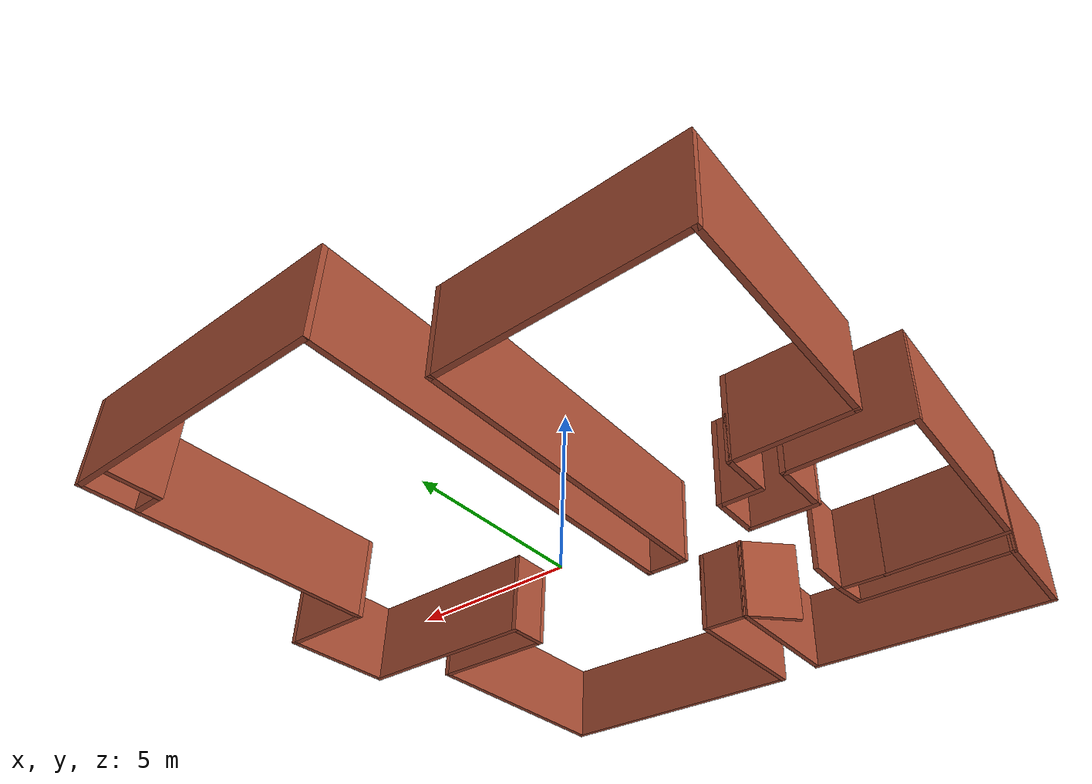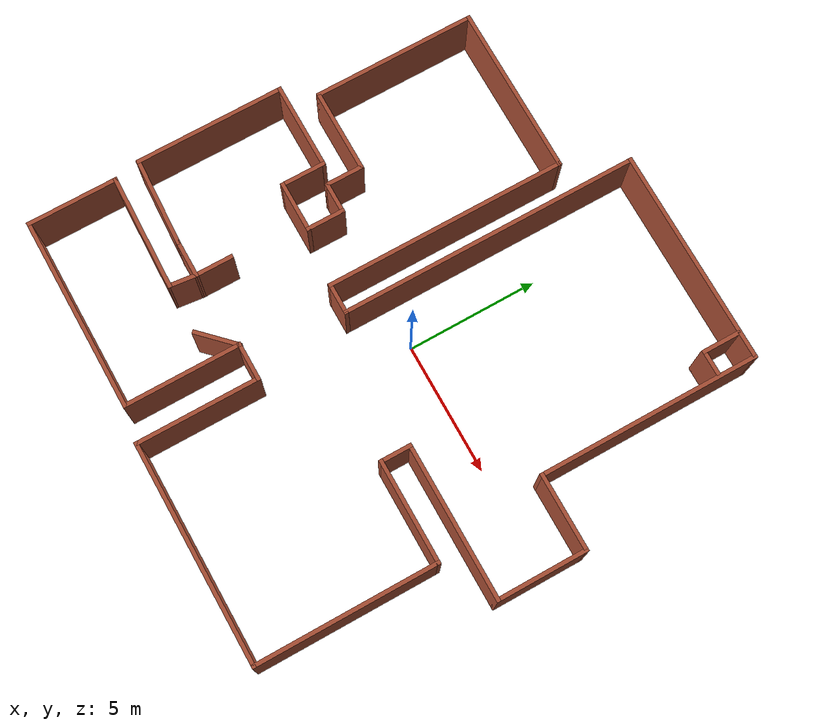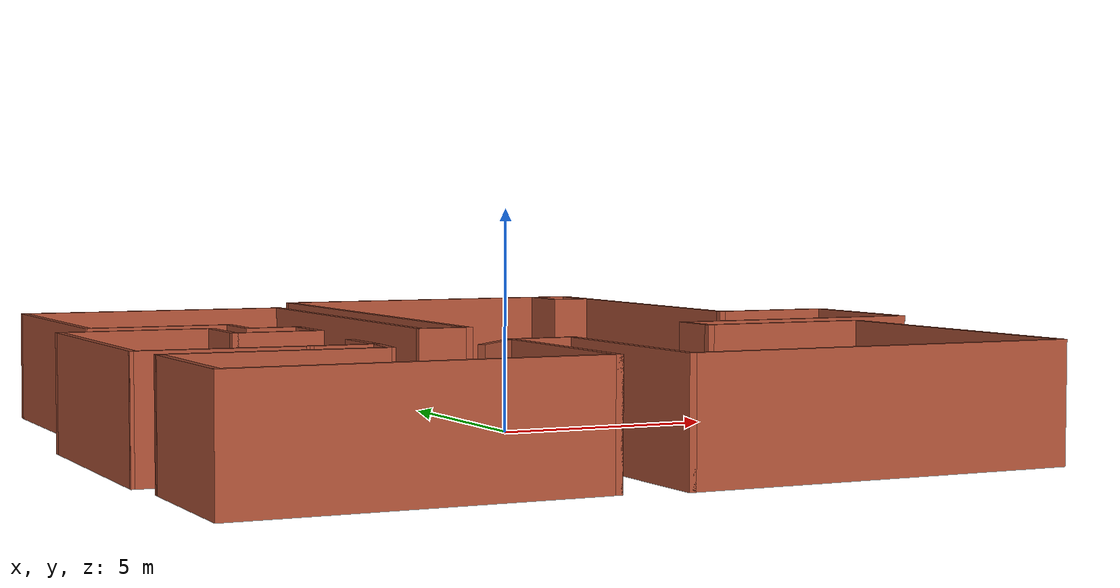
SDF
<?xml version='1.0'?>
<sdf version='1.6'>
  <model name='map_113'>
    <pose frame=''>-0.34995 -0.130126 0 0 -0 0</pose>
    <link name='Wall_25'>
      <collision name='Wall_25_Collision'>
        <geometry>
          <box>
            <size>3.5 0.15 2.5</size>
          </box>
        </geometry>
        <pose frame=''>0 0 1.25 0 -0 0</pose>
      </collision>
      <visual name='Wall_25_Visual'>
        <pose frame=''>0 0 1.25 0 -0 0</pose>
        <geometry>
          <box>
            <size>3.5 0.15 2.5</size>
          </box>
        </geometry>
        <material>
          <script>
            <uri>file://media/materials/scripts/gazebo.material</uri>
            <name>Gazebo/Bricks</name>
          </script>
          <ambient>1 1 1 1</ambient>
        </material>
        <meta>
          <layer>0</layer>
        </meta>
      </visual>
      <pose frame=''>-9.41984 -7.9 0 0 -0 -1.5708</pose>
    </link>
    <link name='Wall_31'>
      <collision name='Wall_31_Collision'>
        <geometry>
          <box>
            <size>7.5 0.15 2.5</size>
          </box>
        </geometry>
        <pose frame=''>0 0 1.25 0 -0 0</pose>
      </collision>
      <visual name='Wall_31_Visual'>
        <pose frame=''>0 0 1.25 0 -0 0</pose>
        <geometry>
          <box>
            <size>7.5 0.15 2.5</size>
          </box>
        </geometry>
        <material>
          <script>
            <uri>file://media/materials/scripts/gazebo.material</uri>
            <name>Gazebo/Bricks</name>
          </script>
          <ambient>1 1 1 1</ambient>
        </material>
        <meta>
          <layer>0</layer>
        </meta>
      </visual>
      <pose frame=''>-5.74484 -9.575 0 0 -0 0</pose>
    </link>
    <link name='Wall_32'>
      <collision name='Wall_32_Collision'>
        <geometry>
          <box>
            <size>4.5 0.15 2.5</size>
          </box>
        </geometry>
        <pose frame=''>0 0 1.25 0 -0 0</pose>
      </collision>
      <visual name='Wall_32_Visual'>
        <pose frame=''>0 0 1.25 0 -0 0</pose>
        <geometry>
          <box>
            <size>4.5 0.15 2.5</size>
          </box>
        </geometry>
        <material>
          <script>
            <uri>file://media/materials/scripts/gazebo.material</uri>
            <name>Gazebo/Bricks</name>
          </script>
          <ambient>1 1 1 1</ambient>
        </material>
        <meta>
          <layer>0</layer>
        </meta>
      </visual>
      <pose frame=''>-2.06984 -7.4 0 0 -0 1.5708</pose>
    </link>
    <link name='Wall_33'>
      <collision name='Wall_33_Collision'>
        <geometry>
          <box>
            <size>1.5 0.15 2.5</size>
          </box>
        </geometry>
        <pose frame=''>0 0 1.25 0 -0 0</pose>
      </collision>
      <visual name='Wall_33_Visual'>
        <pose frame=''>0 0 1.25 0 -0 0</pose>
        <geometry>
          <box>
            <size>1.5 0.15 2.5</size>
          </box>
        </geometry>
        <material>
          <script>
            <uri>file://media/materials/scripts/gazebo.material</uri>
            <name>Gazebo/Bricks</name>
          </script>
          <ambient>1 1 1 1</ambient>
        </material>
        <meta>
          <layer>0</layer>
        </meta>
      </visual>
      <pose frame=''>-1.39484 -5.225 0 0 -0 0</pose>
    </link>
    <link name='Wall_34'>
      <collision name='Wall_34_Collision'>
        <geometry>
          <box>
            <size>4.75 0.15 2.5</size>
          </box>
        </geometry>
        <pose frame=''>0 0 1.25 0 -0 0</pose>
      </collision>
      <visual name='Wall_34_Visual'>
        <pose frame=''>0 0 1.25 0 -0 0</pose>
        <geometry>
          <box>
            <size>4.75 0.15 2.5</size>
          </box>
        </geometry>
        <material>
          <script>
            <uri>file://media/materials/scripts/gazebo.material</uri>
            <name>Gazebo/Bricks</name>
          </script>
          <ambient>1 1 1 1</ambient>
        </material>
        <meta>
          <layer>0</layer>
        </meta>
      </visual>
      <pose frame=''>-0.719837 -7.525 0 0 -0 -1.5708</pose>
    </link>
    <link name='Wall_35'>
      <collision name='Wall_35_Collision'>
        <geometry>
          <box>
            <size>8.5 0.15 2.5</size>
          </box>
        </geometry>
        <pose frame=''>0 0 1.25 0 -0 0</pose>
      </collision>
      <visual name='Wall_35_Visual'>
        <pose frame=''>0 0 1.25 0 -0 0</pose>
        <geometry>
          <box>
            <size>8.5 0.15 2.5</size>
          </box>
        </geometry>
        <material>
          <script>
            <uri>file://media/materials/scripts/gazebo.material</uri>
            <name>Gazebo/Bricks</name>
          </script>
          <ambient>1 1 1 1</ambient>
        </material>
        <meta>
          <layer>0</layer>
        </meta>
      </visual>
      <pose frame=''>3.45516 -9.825 0 0 -0 0</pose>
    </link>
    <link name='Wall_36'>
      <collision name='Wall_36_Collision'>
        <geometry>
          <box>
            <size>7 0.15 2.5</size>
          </box>
        </geometry>
        <pose frame=''>0 0 1.25 0 -0 0</pose>
      </collision>
      <visual name='Wall_36_Visual'>
        <pose frame=''>0 0 1.25 0 -0 0</pose>
        <geometry>
          <box>
            <size>7 0.15 2.5</size>
          </box>
        </geometry>
        <material>
          <script>
            <uri>file://media/materials/scripts/gazebo.material</uri>
            <name>Gazebo/Bricks</name>
          </script>
          <ambient>1 1 1 1</ambient>
        </material>
        <meta>
          <layer>0</layer>
        </meta>
      </visual>
      <pose frame=''>7.63016 -6.4 0 0 -0 1.5708</pose>
    </link>
    <link name='Wall_37'>
      <collision name='Wall_37_Collision'>
        <geometry>
          <box>
            <size>4 0.15 2.5</size>
          </box>
        </geometry>
        <pose frame=''>0 0 1.25 0 -0 0</pose>
      </collision>
      <visual name='Wall_37_Visual'>
        <pose frame=''>0 0 1.25 0 -0 0</pose>
        <geometry>
          <box>
            <size>4 0.15 2.5</size>
          </box>
        </geometry>
        <material>
          <script>
            <uri>file://media/materials/scripts/gazebo.material</uri>
            <name>Gazebo/Bricks</name>
          </script>
          <ambient>1 1 1 1</ambient>
        </material>
        <meta>
          <layer>0</layer>
        </meta>
      </visual>
      <pose frame=''>5.70516 -2.975 0 0 -0 3.14159</pose>
    </link>
    <link name='Wall_38'>
      <collision name='Wall_38_Collision'>
        <geometry>
          <box>
            <size>1.25 0.15 2.5</size>
          </box>
        </geometry>
        <pose frame=''>0 0 1.25 0 -0 0</pose>
      </collision>
      <visual name='Wall_38_Visual'>
        <pose frame=''>0 0 1.25 0 -0 0</pose>
        <geometry>
          <box>
            <size>1.25 0.15 2.5</size>
          </box>
        </geometry>
        <material>
          <script>
            <uri>file://media/materials/scripts/gazebo.material</uri>
            <name>Gazebo/Bricks</name>
          </script>
          <ambient>1 1 1 1</ambient>
        </material>
        <meta>
          <layer>0</layer>
        </meta>
      </visual>
      <pose frame=''>3.78016 -2.425 0 0 -0 1.5708</pose>
    </link>
    <link name='Wall_39'>
      <collision name='Wall_39_Collision'>
        <geometry>
          <box>
            <size>6 0.15 2.5</size>
          </box>
        </geometry>
        <pose frame=''>0 0 1.25 0 -0 0</pose>
      </collision>
      <visual name='Wall_39_Visual'>
        <pose frame=''>0 0 1.25 0 -0 0</pose>
        <geometry>
          <box>
            <size>6 0.15 2.5</size>
          </box>
        </geometry>
        <material>
          <script>
            <uri>file://media/materials/scripts/gazebo.material</uri>
            <name>Gazebo/Bricks</name>
          </script>
          <ambient>1 1 1 1</ambient>
        </material>
        <meta>
          <layer>0</layer>
        </meta>
      </visual>
      <pose frame=''>6.70516 -1.875 0 0 -0 0</pose>
    </link>
    <link name='Wall_42'>
      <collision name='Wall_42_Collision'>
        <geometry>
          <box>
            <size>3.5 0.15 2.5</size>
          </box>
        </geometry>
        <pose frame=''>0 0 1.25 0 -0 0</pose>
      </collision>
      <visual name='Wall_42_Visual'>
        <pose frame=''>0 0 1.25 0 -0 0</pose>
        <geometry>
          <box>
            <size>3.5 0.15 2.5</size>
          </box>
        </geometry>
        <material>
          <script>
            <uri>file://media/materials/scripts/gazebo.material</uri>
            <name>Gazebo/Bricks</name>
          </script>
          <ambient>1 1 1 1</ambient>
        </material>
        <meta>
          <layer>0</layer>
        </meta>
      </visual>
      <pose frame=''>9.63016 -0.2 0 0 -0 1.5708</pose>
    </link>
    <link name='Wall_43'>
      <collision name='Wall_43_Collision'>
        <geometry>
          <box>
            <size>3 0.15 2.5</size>
          </box>
        </geometry>
        <pose frame=''>0 0 1.25 0 -0 0</pose>
      </collision>
      <visual name='Wall_43_Visual'>
        <pose frame=''>0 0 1.25 0 -0 0</pose>
        <geometry>
          <box>
            <size>3 0.15 2.5</size>
          </box>
        </geometry>
        <material>
          <script>
            <uri>file://media/materials/scripts/gazebo.material</uri>
            <name>Gazebo/Bricks</name>
          </script>
          <ambient>1 1 1 1</ambient>
        </material>
        <meta>
          <layer>0</layer>
        </meta>
      </visual>
      <pose frame=''>8.20516 1.475 0 0 -0 3.14159</pose>
    </link>
    <link name='Wall_46'>
      <collision name='Wall_46_Collision'>
        <geometry>
          <box>
            <size>8.5 0.15 2.5</size>
          </box>
        </geometry>
        <pose frame=''>0 0 1.25 0 -0 0</pose>
      </collision>
      <visual name='Wall_46_Visual'>
        <pose frame=''>0 0 1.25 0 -0 0</pose>
        <geometry>
          <box>
            <size>8.5 0.15 2.5</size>
          </box>
        </geometry>
        <material>
          <script>
            <uri>file://media/materials/scripts/gazebo.material</uri>
            <name>Gazebo/Bricks</name>
          </script>
          <ambient>1 1 1 1</ambient>
        </material>
        <meta>
          <layer>0</layer>
        </meta>
      </visual>
      <pose frame=''>6.78016 5.65 0 0 -0 1.5708</pose>
    </link>
    <link name='Wall_47'>
      <collision name='Wall_47_Collision'>
        <geometry>
          <box>
            <size>8.25 0.15 2.5</size>
          </box>
        </geometry>
        <pose frame=''>0 0 1.25 0 -0 0</pose>
      </collision>
      <visual name='Wall_47_Visual'>
        <pose frame=''>0 0 1.25 0 -0 0</pose>
        <geometry>
          <box>
            <size>8.25 0.15 2.5</size>
          </box>
        </geometry>
        <material>
          <script>
            <uri>file://media/materials/scripts/gazebo.material</uri>
            <name>Gazebo/Bricks</name>
          </script>
          <ambient>1 1 1 1</ambient>
        </material>
        <meta>
          <layer>0</layer>
        </meta>
      </visual>
      <pose frame=''>2.73016 9.825 0 0 -0 3.14159</pose>
    </link>
    <link name='Wall_48'>
      <collision name='Wall_48_Collision'>
        <geometry>
          <box>
            <size>11.5 0.15 2.5</size>
          </box>
        </geometry>
        <pose frame=''>0 0 1.25 0 -0 0</pose>
      </collision>
      <visual name='Wall_48_Visual'>
        <pose frame=''>0 0 1.25 0 -0 0</pose>
        <geometry>
          <box>
            <size>11.5 0.15 2.5</size>
          </box>
        </geometry>
        <material>
          <script>
            <uri>file://media/materials/scripts/gazebo.material</uri>
            <name>Gazebo/Bricks</name>
          </script>
          <ambient>1 1 1 1</ambient>
        </material>
        <meta>
          <layer>0</layer>
        </meta>
      </visual>
      <pose frame=''>-1.31984 4.15 0 0 -0 -1.5708</pose>
    </link>
    <link name='Wall_49'>
      <collision name='Wall_49_Collision'>
        <geometry>
          <box>
            <size>1.25 0.15 2.5</size>
          </box>
        </geometry>
        <pose frame=''>0 0 1.25 0 -0 0</pose>
      </collision>
      <visual name='Wall_49_Visual'>
        <pose frame=''>0 0 1.25 0 -0 0</pose>
        <geometry>
          <box>
            <size>1.25 0.15 2.5</size>
          </box>
        </geometry>
        <material>
          <script>
            <uri>file://media/materials/scripts/gazebo.material</uri>
            <name>Gazebo/Bricks</name>
          </script>
          <ambient>1 1 1 1</ambient>
        </material>
        <meta>
          <layer>0</layer>
        </meta>
      </visual>
      <pose frame=''>-1.86984 -1.525 0 0 -0 3.14159</pose>
    </link>
    <link name='Wall_52'>
      <collision name='Wall_52_Collision'>
        <geometry>
          <box>
            <size>9.25 0.15 2.5</size>
          </box>
        </geometry>
        <pose frame=''>0 0 1.25 0 -0 0</pose>
      </collision>
      <visual name='Wall_52_Visual'>
        <pose frame=''>0 0 1.25 0 -0 0</pose>
        <geometry>
          <box>
            <size>9.25 0.15 2.5</size>
          </box>
        </geometry>
        <material>
          <script>
            <uri>file://media/materials/scripts/gazebo.material</uri>
            <name>Gazebo/Bricks</name>
          </script>
          <ambient>1 1 1 1</ambient>
        </material>
        <meta>
          <layer>0</layer>
        </meta>
      </visual>
      <pose frame=''>-2.41984 3.025 0 0 -0 1.5708</pose>
    </link>
    <link name='Wall_53'>
      <collision name='Wall_53_Collision'>
        <geometry>
          <box>
            <size>6.5 0.15 2.5</size>
          </box>
        </geometry>
        <pose frame=''>0 0 1.25 0 -0 0</pose>
      </collision>
      <visual name='Wall_53_Visual'>
        <pose frame=''>0 0 1.25 0 -0 0</pose>
        <geometry>
          <box>
            <size>6.5 0.15 2.5</size>
          </box>
        </geometry>
        <material>
          <script>
            <uri>file://media/materials/scripts/gazebo.material</uri>
            <name>Gazebo/Bricks</name>
          </script>
          <ambient>1 1 1 1</ambient>
        </material>
        <meta>
          <layer>0</layer>
        </meta>
      </visual>
      <pose frame=''>-5.59484 7.575 0 0 -0 3.14159</pose>
    </link>
    <link name='Wall_55'>
      <collision name='Wall_55_Collision'>
        <geometry>
          <box>
            <size>6.25 0.15 2.5</size>
          </box>
        </geometry>
        <pose frame=''>0 0 1.25 0 -0 0</pose>
      </collision>
      <visual name='Wall_55_Visual'>
        <pose frame=''>0 0 1.25 0 -0 0</pose>
        <geometry>
          <box>
            <size>6.25 0.15 2.5</size>
          </box>
        </geometry>
        <material>
          <script>
            <uri>file://media/materials/scripts/gazebo.material</uri>
            <name>Gazebo/Bricks</name>
          </script>
          <ambient>1 1 1 1</ambient>
        </material>
        <meta>
          <layer>0</layer>
        </meta>
      </visual>
      <pose frame=''>-8.76984 4.525 0 0 -0 -1.5708</pose>
    </link>
    <link name='Wall_56'>
      <collision name='Wall_56_Collision'>
        <geometry>
          <box>
            <size>3.25 0.15 2.5</size>
          </box>
        </geometry>
        <pose frame=''>0 0 1.25 0 -0 0</pose>
      </collision>
      <visual name='Wall_56_Visual'>
        <pose frame=''>0 0 1.25 0 -0 0</pose>
        <geometry>
          <box>
            <size>3.25 0.15 2.5</size>
          </box>
        </geometry>
        <material>
          <script>
            <uri>file://media/materials/scripts/gazebo.material</uri>
            <name>Gazebo/Bricks</name>
          </script>
          <ambient>1 1 1 1</ambient>
        </material>
        <meta>
          <layer>0</layer>
        </meta>
      </visual>
      <pose frame=''>-7.21984 1.475 0 0 -0 0</pose>
    </link>
    <link name='Wall_59'>
      <collision name='Wall_59_Collision'>
        <geometry>
          <box>
            <size>1.5 0.15 2.5</size>
          </box>
        </geometry>
        <pose frame=''>0 0 1.25 0 -0 0</pose>
      </collision>
      <visual name='Wall_59_Visual'>
        <pose frame=''>0 0 1.25 0 -0 0</pose>
        <geometry>
          <box>
            <size>1.5 0.15 2.5</size>
          </box>
        </geometry>
        <material>
          <script>
            <uri>file://media/materials/scripts/gazebo.material</uri>
            <name>Gazebo/Bricks</name>
          </script>
          <ambient>1 1 1 1</ambient>
        </material>
        <meta>
          <layer>0</layer>
        </meta>
      </visual>
      <pose frame=''>-5.66984 0.8 0 0 -0 -1.5708</pose>
    </link>
    <link name='Wall_60'>
      <collision name='Wall_60_Collision'>
        <geometry>
          <box>
            <size>1.25 0.15 2.5</size>
          </box>
        </geometry>
        <pose frame=''>0 0 1.25 0 -0 0</pose>
      </collision>
      <visual name='Wall_60_Visual'>
        <pose frame=''>0 0 1.25 0 -0 0</pose>
        <geometry>
          <box>
            <size>1.25 0.15 2.5</size>
          </box>
        </geometry>
        <material>
          <script>
            <uri>file://media/materials/scripts/gazebo.material</uri>
            <name>Gazebo/Bricks</name>
          </script>
          <ambient>1 1 1 1</ambient>
        </material>
        <meta>
          <layer>0</layer>
        </meta>
      </visual>
      <pose frame=''>-5.11984 0.125 0 0 -0 0</pose>
    </link>
    <link name='Wall_61'>
      <collision name='Wall_61_Collision'>
        <geometry>
          <box>
            <size>1.5 0.15 2.5</size>
          </box>
        </geometry>
        <pose frame=''>0 0 1.25 0 -0 0</pose>
      </collision>
      <visual name='Wall_61_Visual'>
        <pose frame=''>0 0 1.25 0 -0 0</pose>
        <geometry>
          <box>
            <size>1.5 0.15 2.5</size>
          </box>
        </geometry>
        <material>
          <script>
            <uri>file://media/materials/scripts/gazebo.material</uri>
            <name>Gazebo/Bricks</name>
          </script>
          <ambient>1 1 1 1</ambient>
        </material>
        <meta>
          <layer>0</layer>
        </meta>
      </visual>
      <pose frame=''>-4.56984 -0.55 0 0 -0 -1.5708</pose>
    </link>
    <link name='Wall_64'>
      <collision name='Wall_64_Collision'>
        <geometry>
          <box>
            <size>2 0.15 2.5</size>
          </box>
        </geometry>
        <pose frame=''>0 0 1.25 0 -0 0</pose>
      </collision>
      <visual name='Wall_64_Visual'>
        <pose frame=''>0 0 1.25 0 -0 0</pose>
        <geometry>
          <box>
            <size>2 0.15 2.5</size>
          </box>
        </geometry>
        <material>
          <script>
            <uri>file://media/materials/scripts/gazebo.material</uri>
            <name>Gazebo/Bricks</name>
          </script>
          <ambient>1 1 1 1</ambient>
        </material>
        <meta>
          <layer>0</layer>
        </meta>
      </visual>
      <pose frame=''>-5.49484 -1.225 0 0 -0 3.14159</pose>
    </link>
    <link name='Wall_65'>
      <collision name='Wall_65_Collision'>
        <geometry>
          <box>
            <size>1.75 0.15 2.5</size>
          </box>
        </geometry>
        <pose frame=''>0 0 1.25 0 -0 0</pose>
      </collision>
      <visual name='Wall_65_Visual'>
        <pose frame=''>0 0 1.25 0 -0 0</pose>
        <geometry>
          <box>
            <size>1.75 0.15 2.5</size>
          </box>
        </geometry>
        <material>
          <script>
            <uri>file://media/materials/scripts/gazebo.material</uri>
            <name>Gazebo/Bricks</name>
          </script>
          <ambient>1 1 1 1</ambient>
        </material>
        <meta>
          <layer>0</layer>
        </meta>
      </visual>
      <pose frame=''>-6.41984 -0.425 0 0 -0 1.5708</pose>
    </link>
    <link name='Wall_66'>
      <collision name='Wall_66_Collision'>
        <geometry>
          <box>
            <size>3.35701 0.15 2.5</size>
          </box>
        </geometry>
        <pose frame=''>0 0 1.25 0 -0 0</pose>
      </collision>
      <visual name='Wall_66_Visual'>
        <pose frame=''>0 0 1.25 0 -0 0</pose>
        <geometry>
          <box>
            <size>3.35701 0.15 2.5</size>
          </box>
        </geometry>
        <material>
          <script>
            <uri>file://media/materials/scripts/gazebo.material</uri>
            <name>Gazebo/Bricks</name>
          </script>
          <ambient>1 1 1 1</ambient>
        </material>
        <meta>
          <layer>0</layer>
        </meta>
      </visual>
      <pose frame=''>-8.02334 0.375 0 0 -0 3.14159</pose>
    </link>
    <link name='Wall_69'>
      <collision name='Wall_69_Collision'>
        <geometry>
          <box>
            <size>5.75 0.15 2.5</size>
          </box>
        </geometry>
        <pose frame=''>0 0 1.25 0 -0 0</pose>
      </collision>
      <visual name='Wall_69_Visual'>
        <pose frame=''>0 0 1.25 0 -0 0</pose>
        <geometry>
          <box>
            <size>5.75 0.15 2.5</size>
          </box>
        </geometry>
        <material>
          <script>
            <uri>file://media/materials/scripts/gazebo.material</uri>
            <name>Gazebo/Bricks</name>
          </script>
          <ambient>1 1 1 1</ambient>
        </material>
        <meta>
          <layer>0</layer>
        </meta>
      </visual>
      <pose frame=''>-9.62684 -2.425 0 0 -0 -1.5708</pose>
    </link>
    <link name='Wall_70'>
      <collision name='Wall_70_Collision'>
        <geometry>
          <box>
            <size>3.46041 0.15 2.5</size>
          </box>
        </geometry>
        <pose frame=''>0 0 1.25 0 -0 0</pose>
      </collision>
      <visual name='Wall_70_Visual'>
        <pose frame=''>0 0 1.25 0 -0 0</pose>
        <geometry>
          <box>
            <size>3.46041 0.15 2.5</size>
          </box>
        </geometry>
        <material>
          <script>
            <uri>file://media/materials/scripts/gazebo.material</uri>
            <name>Gazebo/Bricks</name>
          </script>
          <ambient>1 1 1 1</ambient>
        </material>
        <meta>
          <layer>0</layer>
        </meta>
      </visual>
      <pose frame=''>-7.97334 -5.3 0 0 -0 -0.045327</pose>
    </link>
    <link name='Wall_72'>
      <collision name='Wall_72_Collision'>
        <geometry>
          <box>
            <size>1.5 0.15 2.5</size>
          </box>
        </geometry>
        <pose frame=''>0 0 1.25 0 -0 0</pose>
      </collision>
      <visual name='Wall_72_Visual'>
        <pose frame=''>0 0 1.25 0 -0 0</pose>
        <geometry>
          <box>
            <size>1.5 0.15 2.5</size>
          </box>
        </geometry>
        <material>
          <script>
            <uri>file://media/materials/scripts/gazebo.material</uri>
            <name>Gazebo/Bricks</name>
          </script>
          <ambient>1 1 1 1</ambient>
        </material>
        <meta>
          <layer>0</layer>
        </meta>
      </visual>
      <pose frame=''>-5.64484 -5.375 0 0 -0 0</pose>
    </link>
    <link name='Wall_73'>
      <collision name='Wall_73_Collision'>
        <geometry>
          <box>
            <size>1.5 0.15 2.5</size>
          </box>
        </geometry>
        <pose frame=''>0 0 1.25 0 -0 0</pose>
      </collision>
      <visual name='Wall_73_Visual'>
        <pose frame=''>0 0 1.25 0 -0 0</pose>
        <geometry>
          <box>
            <size>1.5 0.15 2.5</size>
          </box>
        </geometry>
        <material>
          <script>
            <uri>file://media/materials/scripts/gazebo.material</uri>
            <name>Gazebo/Bricks</name>
          </script>
          <ambient>1 1 1 1</ambient>
        </material>
        <meta>
          <layer>0</layer>
        </meta>
      </visual>
      <pose frame=''>-4.96984 -4.7 0 0 -0 1.5708</pose>
    </link>
    <link name='Wall_76'>
      <collision name='Wall_76_Collision'>
        <geometry>
          <box>
            <size>1.75 0.15 2.5</size>
          </box>
        </geometry>
        <pose frame=''>0 0 1.25 0 -0 0</pose>
      </collision>
      <visual name='Wall_76_Visual'>
        <pose frame=''>0 0 1.25 0 -0 0</pose>
        <geometry>
          <box>
            <size>1.75 0.15 2.5</size>
          </box>
        </geometry>
        <material>
          <script>
            <uri>file://media/materials/scripts/gazebo.material</uri>
            <name>Gazebo/Bricks</name>
          </script>
          <ambient>1 1 1 1</ambient>
        </material>
        <meta>
          <layer>0</layer>
        </meta>
      </visual>
      <pose frame=''>-2.63552 -5.79068 0 0 -0 -2.35619</pose>
    </link>
    <link name='Wall_79'>
      <collision name='Wall_79_Collision'>
        <geometry>
          <box>
            <size>1.12708 0.15 2.5</size>
          </box>
        </geometry>
        <pose frame=''>0 0 1.25 0 -0 0</pose>
      </collision>
      <visual name='Wall_79_Visual'>
        <pose frame=''>0 0 1.25 0 -0 0</pose>
        <geometry>
          <box>
            <size>1.12708 0.15 2.5</size>
          </box>
        </geometry>
        <material>
          <script>
            <uri>file://media/materials/scripts/gazebo.material</uri>
            <name>Gazebo/Bricks</name>
          </script>
          <ambient>1 1 1 1</ambient>
        </material>
        <meta>
          <layer>0</layer>
        </meta>
      </visual>
      <pose frame=''>-5.02189 -5.86076 0 0 -0 1.46404</pose>
    </link>
    <link name='Wall_81'>
      <collision name='Wall_81_Collision'>
        <geometry>
          <box>
            <size>4.49759 0.15 2.5</size>
          </box>
        </geometry>
        <pose frame=''>0 0 1.25 0 -0 0</pose>
      </collision>
      <visual name='Wall_81_Visual'>
        <pose frame=''>0 0 1.25 0 -0 0</pose>
        <geometry>
          <box>
            <size>4.49759 0.15 2.5</size>
          </box>
        </geometry>
        <material>
          <script>
            <uri>file://media/materials/scripts/gazebo.material</uri>
            <name>Gazebo/Bricks</name>
          </script>
          <ambient>1 1 1 1</ambient>
        </material>
        <meta>
          <layer>0</layer>
        </meta>
      </visual>
      <pose frame=''>-7.24689 -6.28576 0 0 -0 3.11364</pose>
    </link>
    <link name='Wall_83'>
      <collision name='Wall_83_Collision'>
        <geometry>
          <box>
            <size>1.5 0.15 2.5</size>
          </box>
        </geometry>
        <pose frame=''>0 0 1.25 0 -0 0</pose>
      </collision>
      <visual name='Wall_83_Visual'>
        <pose frame=''>0 0 1.25 0 -0 0</pose>
        <geometry>
          <box>
            <size>1.5 0.15 2.5</size>
          </box>
        </geometry>
        <material>
          <script>
            <uri>file://media/materials/scripts/gazebo.material</uri>
            <name>Gazebo/Bricks</name>
          </script>
          <ambient>1 1 1 1</ambient>
        </material>
        <meta>
          <layer>0</layer>
        </meta>
      </visual>
      <pose frame=''>5.80675 9.08274 0 0 -0 -1.5708</pose>
    </link>
    <link name='Wall_84'>
      <collision name='Wall_84_Collision'>
        <geometry>
          <box>
            <size>1 0.15 2.5</size>
          </box>
        </geometry>
        <pose frame=''>0 0 1.25 0 -0 0</pose>
      </collision>
      <visual name='Wall_84_Visual'>
        <pose frame=''>0 0 1.25 0 -0 0</pose>
        <geometry>
          <box>
            <size>1 0.15 2.5</size>
          </box>
        </geometry>
        <material>
          <script>
            <uri>file://media/materials/scripts/gazebo.material</uri>
            <name>Gazebo/Bricks</name>
          </script>
          <ambient>1 1 1 1</ambient>
        </material>
        <meta>
          <layer>0</layer>
        </meta>
      </visual>
      <pose frame=''>6.23175 8.40774 0 0 -0 0</pose>
    </link>
    <static>1</static>
  </model>
</sdf>
